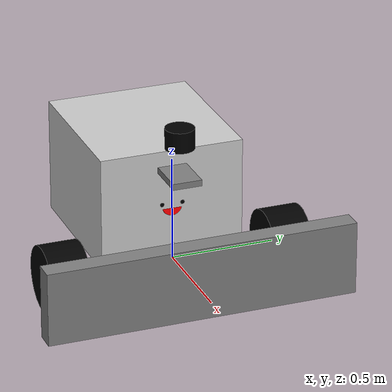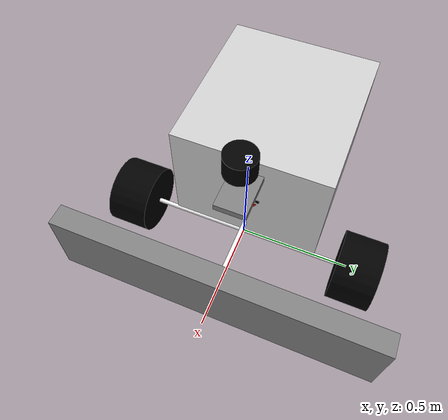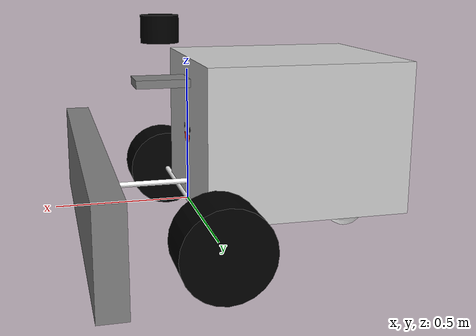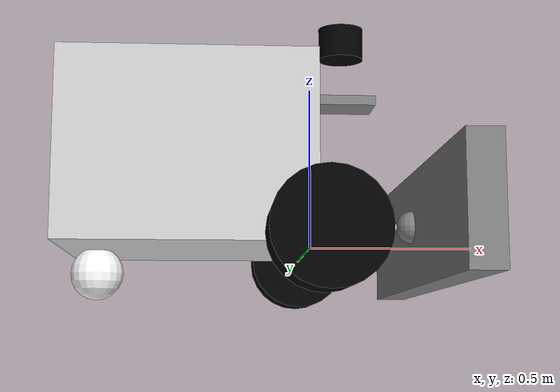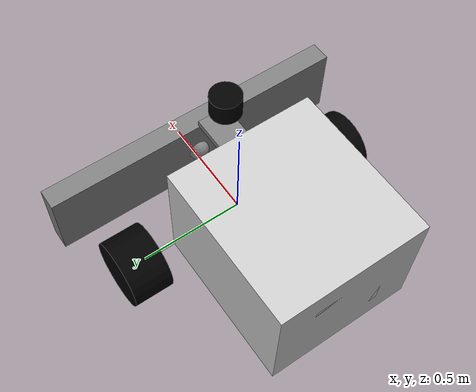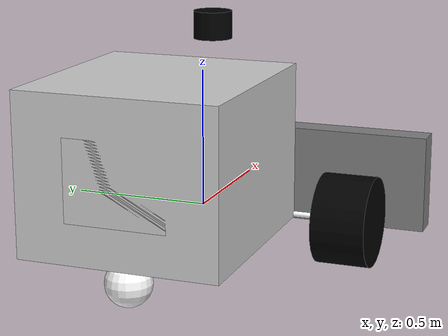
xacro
<?xml version="1.0"?>
<robot xmlns:xacro="http://www.ros.org/wiki/xacro"  name="robot">

    <xacro:arg name="use_ros2_control" default="true"/>
    <xacro:arg name="use_sim_time" default="false"/>

    <xacro:include filename="robot_core.xacro" />

    <xacro:if value="$(arg use_ros2_control)">
        <xacro:include filename="ros2_control.xacro" />
    </xacro:if>
    <xacro:unless value="$(arg use_ros2_control)">
        <xacro:include filename="gazebo_control.xacro" />
    </xacro:unless>
    <xacro:include filename="lidar.xacro" />
    <xacro:include filename="imu.xacro" />
    <xacro:include filename="gps.xacro"/>
    <xacro:include filename="plowblade.xacro"/>
    <xacro:include filename="battery.xacro"/>

    <xacro:include filename="face.xacro" />

</robot>

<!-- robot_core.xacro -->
<robot xmlns:xacro="http://www.ros.org/wiki/xacro" >

    <xacro:include filename="inertial_macros.xacro"/>

    <xacro:property name="chassis_length" value="0.750"/>
    <xacro:property name="chassis_width" value="0.696"/>
    <xacro:property name="chassis_height" value="0.556"/>
    <xacro:property name="chassis_mass" value="3.0"/>
    <xacro:property name="wheel_radius" value="0.16"/>
    <xacro:property name="wheel_thickness" value="0.19"/>
    <xacro:property name="wheel_mass" value="1.0"/>
    <xacro:property name="wheel_offset_x" value="0.226"/>
    <xacro:property name="wheel_offset_y" value="${chassis_width/2 + wheel_thickness + 0.01}"/>
    <xacro:property name="wheel_offset_z" value="0.01"/>
    <xacro:property name="caster_wheel_radius" value="0.01"/>
    <xacro:property name="caster_wheel_mass" value="0.2"/>
    <xacro:property name="caster_wheel_offset_x" value="0.075"/>
    <xacro:property name="caster_wheel_offset_z" value="${wheel_offset_z - wheel_radius + caster_wheel_radius}"/>

    <material name="white">
        <color rgba="1 1 1 1" />
    </material>

    <material name="orange">
        <color rgba="1 0.3 0.1 1"/>
    </material>

    <material name="blue">
        <color rgba="0.2 0.2 1 1"/>
    </material>

    <material name="black">
        <color rgba="0 0 0 1"/>
    </material>

    <material name="red">
        <color rgba="1 0 0 1"/>
    </material>

    <material name="grey">
        <color rgba="0.5 0.5 0.5 1.0"/>
    </material>

     <material name="lightgrey">
         <color rgba="0.8 0.8 0.8 1.0"/>
    </material>

    <material name="greynavy">
        <color rgba="0.25 0.25 0.375 1.0"/>
    </material>

    <!-- BASE LINK -->

    <link name="base_link">

    </link>

    <!-- BASE_FOOTPRINT LINK -->

    <joint name="base_footprint_joint" type="fixed">
        <parent link="base_link"/>
        <child link="base_footprint"/>
        <origin xyz="0 0 0" rpy="0 0 0"/>
    </joint>

    <link name="base_footprint">
    </link>

    <!-- CHASSIS LINK -->

    <joint name="chassis_joint" type="fixed">
        <parent link="base_link"/>
        <child link="chassis"/>
        <origin xyz="0 0 ${-wheel_offset_z}"/>
    </joint>

    <link name="chassis">
        <visual>
            <origin xyz="${-chassis_length/2} 0 ${chassis_height/2}"/>
            <geometry>
                <box size="${chassis_length} ${chassis_width} ${chassis_height}"/>
            </geometry>
            <material name="lightgrey"/>
        </visual>
        <collision>
            <origin xyz="${-chassis_length/2} 0 ${chassis_height/2}"/>
            <geometry>
                <box size="${chassis_length} ${chassis_width} ${chassis_height}"/>
            </geometry>
        </collision>
        <xacro:inertial_box mass="${chassis_mass}" x="${chassis_length}" y="${chassis_width}" z="${chassis_height}">
            <origin xyz="${-chassis_length/2} 0 ${chassis_height/2}" rpy="0 0 0"/>
        </xacro:inertial_box>
    </link>

    <gazebo reference="chassis">
        <material>Gazebo/LightGrey</material>
    </gazebo>

    <!-- LEFT WHEEL LINK -->

    <joint name="left_wheel_joint" type="continuous">
        <parent link="base_link"/>
        <child link="left_wheel"/>
        <origin xyz="0 ${wheel_offset_y} 0" rpy="-${pi/2} 0 0" />
        <axis xyz="0 0 1"/>
        <dynamics damping="0.2"/>
    </joint>

    <link name="left_wheel">
        <visual>
            <geometry>
                <cylinder radius="${wheel_radius}" length="${wheel_thickness}"/>
            </geometry>
            <material name="black"/>
        </visual>
        <collision>
            <geometry>
                <sphere radius="${wheel_radius}"/>
            </geometry>
            <surface>
                <friction>
                <ode>
                    <mu>10000.0</mu>
                    <mu2>10000.0</mu2>
                </ode>
                </friction>
                <contact>
                <ode>
                    <min_depth>0.003</min_depth>
                </ode>
                </contact>
            </surface>
        </collision>
        <xacro:inertial_cylinder mass="${wheel_mass}" length="${wheel_thickness}" radius="${wheel_radius}">
            <origin xyz="0 0 0" rpy="0 0 0"/>
        </xacro:inertial_cylinder>
    </link>

    <gazebo reference="left_wheel">
        <material>Gazebo/Black</material>
    </gazebo>

    <!-- RIGHT WHEEL LINK -->

    <joint name="right_wheel_joint" type="continuous">
        <parent link="base_link"/>
        <child link="right_wheel"/>
        <origin xyz="0 -${wheel_offset_y} 0" rpy="${pi/2} 0 0" />
        <axis xyz="0 0 -1"/>
    </joint>

    <link name="right_wheel">
        <visual>
            <geometry>
                <cylinder radius="${wheel_radius}" length="${wheel_thickness}"/>
            </geometry>
            <material name="black"/>
        </visual>
        <collision>
            <geometry>
                <sphere radius="${wheel_radius}"/>
            </geometry>
            <surface>
                <friction>
                <ode>
                    <mu>10000.0</mu>
                    <mu2>10000.0</mu2>
                </ode>
                </friction>
                <contact>
                <ode>
                    <min_depth>0.003</min_depth>
                </ode>
                </contact>
            </surface>
        </collision>
        <xacro:inertial_cylinder mass="${wheel_mass}" length="${wheel_thickness}" radius="${wheel_radius}">
            <origin xyz="0 0 0" rpy="0 0 0"/>
        </xacro:inertial_cylinder>
    </link>

    <gazebo reference="right_wheel">
        <material>Gazebo/Black</material>
    </gazebo>

    <joint name="wheel_joint" type="fixed">
        <parent link="base_link"/>
        <child link="wheel_bar"/>
        <origin xyz="0 0 0" rpy="${pi/2} 0 0" />
        <axis xyz="0 0 -1"/>
    </joint>

    <link name="wheel_bar">
        <visual>
            <geometry>
                <cylinder radius="0.01" length="${chassis_width + wheel_thickness + 0.01}"/>
            </geometry>
            <material name="white"/>
        </visual>
        <collision>
            <geometry>
                <cylinder radius="0.01" length="${chassis_width + wheel_thickness + 0.01}"/>
            </geometry>
        </collision>
    </link>

    <gazebo reference="wheel_bar">
        <material>Gazebo/white</material>
    </gazebo>

    <!-- CASTER WHEEL LINK -->

    <joint name="caster_wheel_joint" type="fixed">
        <parent link="chassis"/>
        <child link="caster_wheel"/>
        <origin xyz="${-chassis_length + 0.1} 0 ${-wheel_radius/2 + 0.01}"/>
    </joint>

    <link name="caster_wheel">
        <visual>
            <geometry>
                <sphere radius="${wheel_radius/2}"/>
            </geometry>
            <material name="white"/>
        </visual>
        <collision>
            <geometry>
                <sphere radius="${wheel_radius/2}"/>
            </geometry>
        </collision>
        <xacro:inertial_sphere mass="${caster_wheel_mass}" radius="${wheel_radius/2}">
            <origin xyz="0 0 0" rpy="0 0 0"/>
        </xacro:inertial_sphere>
    </link>

</robot>

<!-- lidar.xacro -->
<robot xmlns:xacro="http://www.ros.org/wiki/xacro" >

    <!-- LIDAR -->

    <joint name="laser_joint" type="fixed">
        <parent link="chassis"/>
        <child link="laser_frame"/>
        <origin xyz="0.10 0 0.66" rpy="0 0 0"/>
    </joint>

    <link name="laser_frame">
        <visual>
            <geometry>
                <cylinder radius="0.05" length="0.04"/>
            </geometry>
            <material name="black"/>
        </visual>
        <visual>
            <origin xyz="0 0 0"/>
            <geometry>
                <cylinder radius="0.07" length="0.1"/>
            </geometry>
            <material name="black"/>
        </visual>
        <collision>
            <geometry>
                <cylinder radius="0.05" length="0.04"/>
            </geometry>
        </collision>
        <xacro:inertial_cylinder mass="0.1" length="0.04" radius="0.05">
            <origin xyz="0 0 0" rpy="0 0 0"/>
        </xacro:inertial_cylinder>
    </link>

    <gazebo reference="laser_frame">
        <material>Gazebo/Black</material>

        <sensor name="laser" type="ray">
            <pose> 0 0 0 0 0 0 </pose>
            <visualize>false</visualize>
            <update_rate>10</update_rate>
            <ray>
                <scan>
                    <horizontal>
                        <samples>360</samples>
                        <min_angle>0</min_angle>
                        <max_angle>3.14</max_angle>
                    </horizontal>
                </scan>
                <range>
                    <min>0.2</min>
                    <max>35</max>
                </range>
            </ray>
            <plugin name="laser_controller" filename="libgazebo_ros_ray_sensor.so">
                <ros>
                    <argument>~/out:=scan</argument>
                </ros>
                <output_type>sensor_msgs/LaserScan</output_type>
                <frame_name>laser_frame</frame_name>
            </plugin>
        </sensor>
    </gazebo>

    <!-- LIDAR HOLDER -->

    <joint name="mount_joint" type="fixed">
        <parent link="chassis"/>
        <child link="lidar_holder"/>
        <origin xyz="0 0 0.466" rpy="0 0 0"/>
    </joint>

    <link name="lidar_holder">
         <visual>
            <geometry>
                <box size="0.40 0.14 0.03"/>
            </geometry>
            <material name="grey"/>
        </visual>
        <collision>
            <geometry>
                <box size="0.25 0.14 0.03"/>
            </geometry>
        </collision>
        <xacro:inertial_box mass="0.01" x="0.25" y="0.14" z="0.03">
            <origin xyz="0 0 0" rpy="0 0 0"/>
        </xacro:inertial_box>

    </link>

    <gazebo reference="lidar_holder">
        <material>Gazebo/Grey</material>
    </gazebo>

</robot>

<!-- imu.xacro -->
<robot xmlns:xacro="http://www.ros.org/wiki/xacro" >

    <joint name="imu_joint" type="fixed">
        <parent link="chassis"/>
        <child link="imu_link"/>
        <origin xyz="-0.375 0 0.278" rpy="0 0.18 0"/>
    </joint>

    <link name="imu_link">
        <visual>
            <geometry>
                <box size="0.07 0.03 0.03"/>
            </geometry>
            <material name="black"/>
        </visual>
        <visual>
            <origin xyz="0 0 -0.05"/>
            <geometry>
                <cylinder radius="0.002" length="0.1"/>
            </geometry>
            <material name="black"/>
        </visual>
    </link>

    <gazebo reference="imu_link">
        <material>Gazebo/Black</material>

        <gravity>true</gravity>
        <sensor name="imu_sensor" type="imu">
          <always_on>true</always_on>
          <update_rate>100</update_rate>
          <visualize>true</visualize>
          <topic>__default_topic__</topic>
          <plugin filename="libgazebo_ros_imu_sensor.so" name="imu_plugin">
            <topicName>imu</topicName>
            <bodyName>imu_link</bodyName>
            <updateRateHZ>10.0</updateRateHZ>
            <gaussianNoise>0.0</gaussianNoise>
            <xyzOffset>0 0 0</xyzOffset>
            <rpyOffset>0 0 0</rpyOffset>
            <frameName>imu_link</frameName>
            <initialOrientationAsReference>false</initialOrientationAsReference>
          </plugin>
          <pose>0 0 0 0 0 0</pose>
        </sensor>
    </gazebo>

</robot>

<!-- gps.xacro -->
<robot xmlns:xacro="http://www.ros.org/wiki/xacro" >
  <joint name="gps_joint" type="fixed">
    <parent link="chassis"/>
    <child link="gps_link"/>
    <origin xyz="-0.375 0 0.278" rpy="0 0.18 0"/>
  </joint>
  <link name="gps_link">
    <visual>
      <geometry>
          <box size="0.010 0.01 0.01"/>
      </geometry>
      <material name="black"/>
    </visual>
  </link>
  <gazebo reference="gps_link">
      <material>Gazebo/Black</material>

      <gravity>true</gravity>
      <sensor name="snowplow_gps" type="gps">
        <always_on>true</always_on>
        <update_rate>1</update_rate>
        <pose>0 0 0 0 0 0</pose>
        <gps>
        <position_sensing>
          <horizontal>
            <noise type="gaussian">
              <mean>0.0</mean>
              <stddev>0.01</stddev>
            </noise>
          </horizontal>
          <vertical>
            <noise type="gaussian">
              <mean>0.0</mean>
              <stddev>0.01</stddev>
            </noise>
          </vertical>
        </position_sensing>
        </gps>
      <plugin name="my_gps_plugin" filename="libgazebo_ros_gps_sensor.so">
        <ros>
          <remapping>~/out:=/gps/fix</remapping>
        </ros>
        <frame_name>gps_link</frame_name>
      </plugin>
      </sensor>
  </gazebo>
</robot>

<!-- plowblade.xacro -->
<robot xmlns:xacro="http://ros.org/wiki/xacro">

  <!-- Define parameters -->
  <xacro:property name="plow_height" value="${chassis_height - 0.2}"/> <!-- Height of the snowplow blade -->
  <xacro:property name="plow_width" value="1.5"/> <!-- Width of the snowplow blade -->
  <xacro:property name="plow_length" value="0.1"/> <!-- Length of the snowplow blade -->
  <xacro:property name="sphere_radius" value="0.05"/> <!-- Radius of the sphere -->
  <xacro:property name="sphere_height" value="${chassis_height/2 - 0.1}"/> <!-- Height of the sphere -->
  <xacro:property name="bar_length" value="${0.32-sphere_radius}"/> <!-- Height of the sphere -->

  <!-- Define materials -->

<!-- plow holder -->

  <joint name="blade_bar_joint" type="fixed">
        <parent link="chassis"/>
        <child link="blade_bar"/>
        <origin xyz="${bar_length/2} 0 ${chassis_height/2 - 0.2}" rpy="0 ${pi/2} 0" />
    </joint>

    <link name="blade_bar">
        <visual>
            <geometry>
                <cylinder radius="0.01" length="${bar_length}"/>
            </geometry>
            <material name="white"/>
        </visual>
        <collision>
            <geometry>
                <cylinder radius="0.01" length="${bar_length}"/>
            </geometry>
        </collision>
    </link>

    <gazebo reference="blade_bar">
        <material>Gazebo/white</material>
    </gazebo>

    <!-- plow  -->
    <joint name="blade_joint" type="fixed">
        <parent link ="blade_bar" />
        <child link ="snowplow_blade_link" />
        <origin xyz="0 0 ${bar_length/2 + sphere_radius}" rpy="0 ${-pi/2} 0" />
    </joint>

  <!-- Define the link -->
  <link name="snowplow_blade_link">
    <!-- Visual representation of the snowplow blade -->
    <visual>
      <origin xyz="0 0 0" rpy="0 0 0"/>
      <!-- Sphere for the back part -->
      <geometry>
        <sphere radius="${sphere_radius}" scale="1 9 1"/>
      </geometry>
      <!-- Apply grey material -->
      <material name="grey"/>
    </visual>
    <!-- Collision representation (same as visual for simplicity) -->
    <collision>
      <origin xyz="0 0 0" rpy="0 0 0"/>
      <!-- Sphere for the back part -->
      <geometry>
        <sphere radius="${sphere_radius}" scale="1 2 1"/>
      </geometry>
    </collision>
    <!-- Front part of the snowplow blade (box) -->
    <visual>
      <origin xyz="${plow_length / 2} 0 -0.01" rpy="0 0 0"/>
      <geometry>
        <box size="${plow_length} ${plow_width} ${plow_height}"/>
      </geometry>
      <!-- Apply grey material -->
      <material name="grey"/>
    </visual>
    <!-- Collision representation (same as visual for simplicity) -->
    <collision>
      <origin xyz="${plow_length / 2} 0 -0.01" rpy="0 0 0"/>
      <geometry>
        <box size="${plow_length} ${plow_width} ${plow_height}"/>
      </geometry>
    </collision>
  </link>

  <!-- Gazebo specific properties -->
  <gazebo reference="snowplow_blade_link">
    <material>Gazebo/Grey</material> <!-- Gazebo built-in material -->
  </gazebo>

</robot>

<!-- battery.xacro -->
<robot xmlns:xacro="http://www.ros.org/wiki/xacro" >

    <joint name="battery_joint" type="fixed">
        <parent link="chassis"/>
        <child link="battery_pack"/>
        <origin xyz="${-chassis_length + (chassis_length/4) } 0 ${chassis_height/2}" rpy="0 0 0"/>
    </joint>

    <link name="battery_pack">
        <visual>
            <origin xyz="0 0 0"/>
            <geometry>
                <box size="${chassis_length/2} ${chassis_width/2} ${chassis_height/2}"/>
            </geometry>
            <material name="lightgrey"/>
        </visual>
        <collision>
            <origin xyz="0 0 0"/>
            <geometry>
                <box size="${chassis_length/2} ${chassis_width/2} ${chassis_height/2}"/>
            </geometry>
        </collision>
        <xacro:inertial_box mass="2.0" x="${chassis_length/2}" y="${chassis_width/2}" z="${chassis_height/2}">
            <origin xyz="0 0 0" rpy="0 0 0"/>
        </xacro:inertial_box>
    </link>

    <gazebo reference="battery_pack">
        <material>Gazebo/LightGrey</material>
    </gazebo>

</robot>

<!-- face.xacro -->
<robot xmlns:xacro="http://www.ros.org/wiki/xacro" >

    <joint name="face_joint" type="fixed">
        <parent link="chassis"/>
        <child link="face_link"/>
        <origin xyz="0 0 ${chassis_height/2}" rpy="0 0 0"/>
    </joint>

    <link name="face_link">
        <visual>
            <origin xyz="0 0.05 0.01" rpy="0 ${pi/2} 0"/>
            <geometry>
                <cylinder radius="0.01" length="0.002"/>
            </geometry>
            <material name="black"/>
        </visual>

        <visual>
            <origin xyz="0 -0.05 0.01" rpy="0 ${pi/2} 0"/>
            <geometry>
                <cylinder radius="0.01" length="0.002"/>
            </geometry>
            <material name="black"/>
        </visual>

        <visual>
            <origin xyz="-0.011 0 -0.00" rpy="0 ${1.5} 0"/>
            <geometry>
                <cylinder radius="0.05" length="0.02"/>
            </geometry>
            <material name="red"/>
        </visual>
    </link>

    <gazebo reference="face_link">
        <material>Gazebo/Black</material>
    </gazebo>

</robot>
